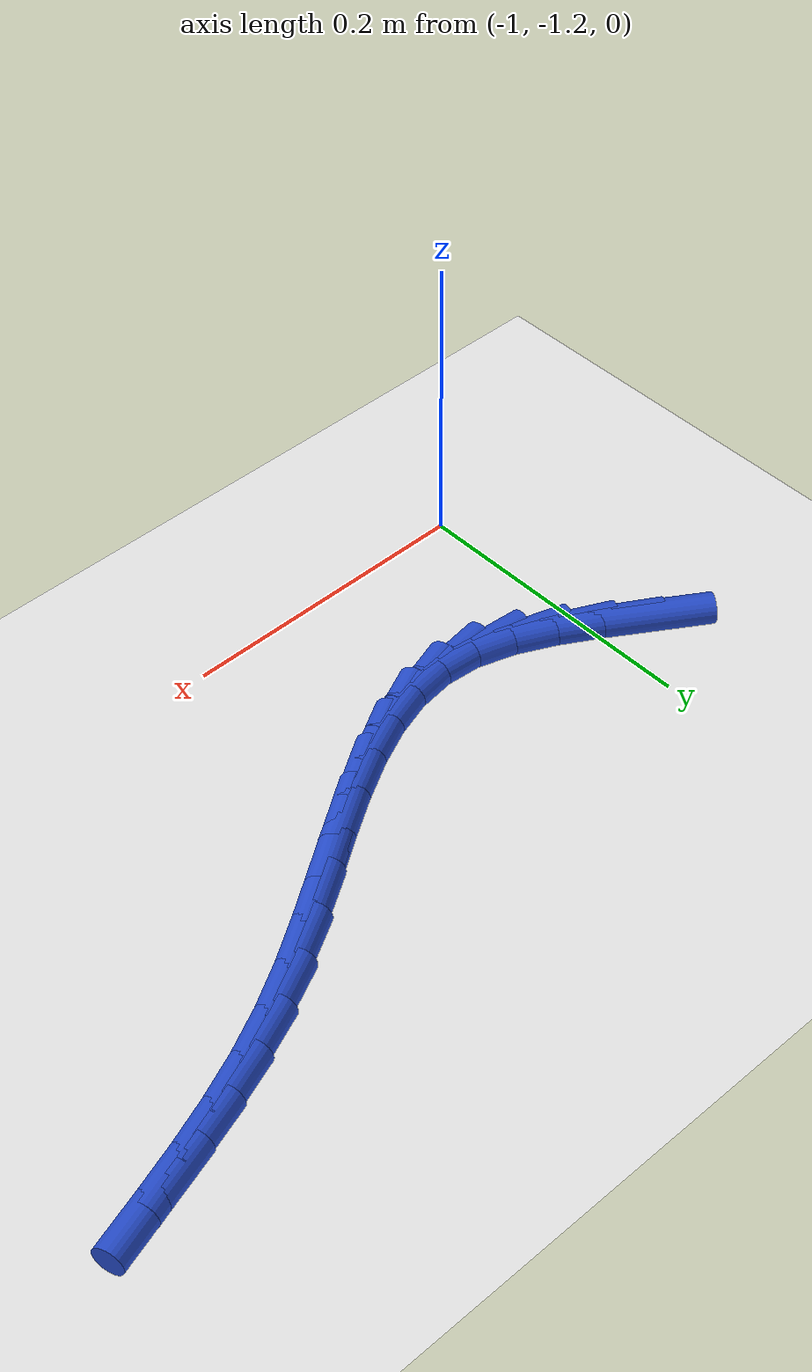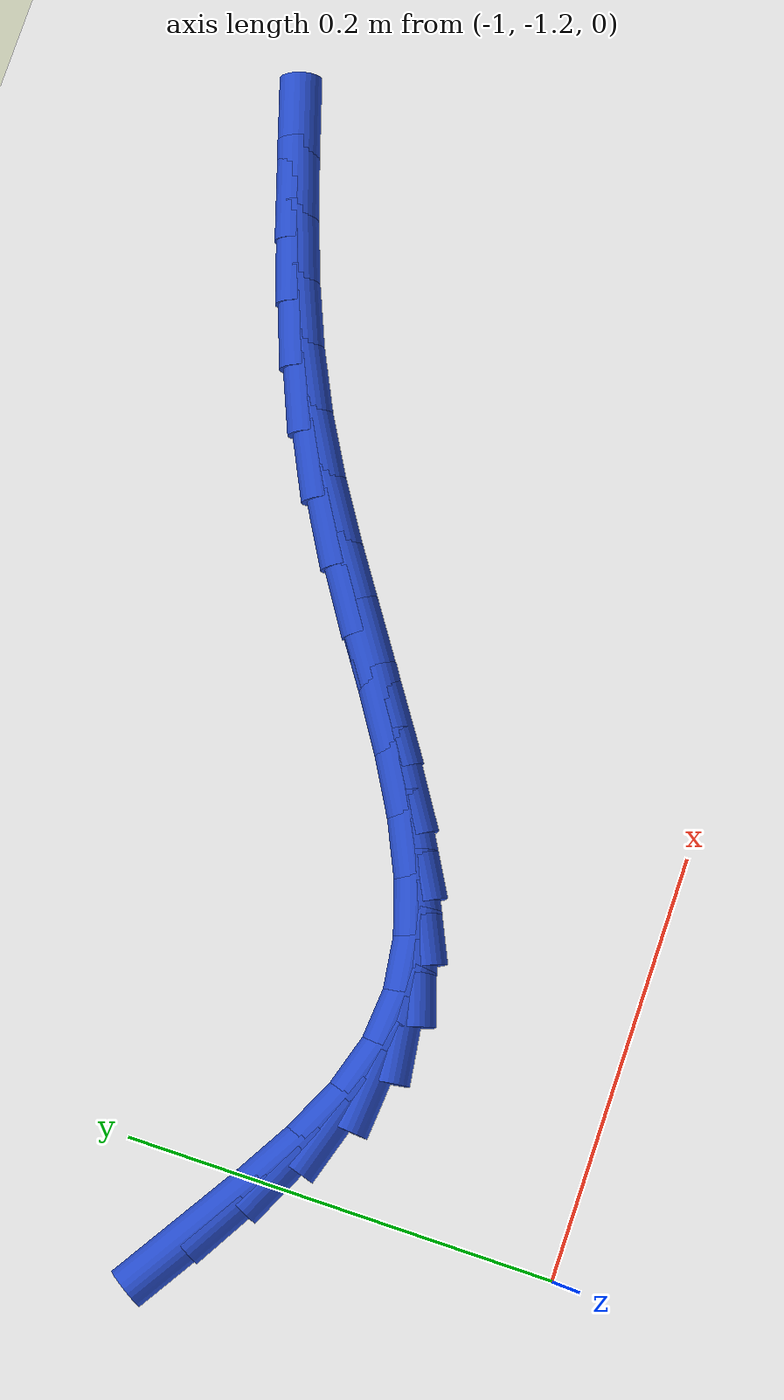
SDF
<sdf version="1.6">
 <world name="default">
  <model name="ground_plane">
   <static>1</static>
   <link name="link">
    <collision name="collision">
     <geometry><plane><normal>0 0 1</normal><size>100 100</size></plane></geometry>
     <surface><friction><ode><mu>100</mu><mu2>50</mu2></ode></friction></surface>
    </collision>
    <visual name="visual">
     <cast_shadows>0</cast_shadows>
     <geometry><plane><normal>0 0 1</normal><size>100 100</size></plane></geometry>
     <material>
      <script><uri>file://media/materials/scripts/gazebo.material</uri><name>Gazebo/WhiteGlow</name></script>
     </material>
    </visual>
   </link>
  </model>
  <model name="line">
   <link name="link_173">
    <pose>-1.0292658286698713 -1.0428921860823317 0.01 0 1.57 -0.5698312144285704</pose>
    <collision name="collision">
     <geometry><cylinder><radius>0.01</radius><length>0.08</length></cylinder></geometry>
    </collision>
    <visual name="visual">
     <material>
      <script><name>Gazebo/Blue</name><uri>file://media/materials/scripts/gazebo.material</uri></script>
     </material>
     <geometry><cylinder><radius>0.01</radius><length>0.08</length></cylinder></geometry>
    </visual>
   </link>
   <link name="link_174">
    <pose>-1.0032082219172445 -1.0595880881285966 0.01 0 1.57 -0.5365276469978014</pose>
    <collision name="collision">
     <geometry><cylinder><radius>0.01</radius><length>0.08</length></cylinder></geometry>
    </collision>
    <visual name="visual">
     <material>
      <script><name>Gazebo/Blue</name><uri>file://media/materials/scripts/gazebo.material</uri></script>
     </material>
     <geometry><cylinder><radius>0.01</radius><length>0.08</length></cylinder></geometry>
    </visual>
   </link>
   <link name="link_175">
    <pose>-0.977419766955449 -1.0749249821705216 0.01 0 1.57 -0.45122486740484097</pose>
    <collision name="collision">
     <geometry><cylinder><radius>0.01</radius><length>0.08</length></cylinder></geometry>
    </collision>
    <visual name="visual">
     <material>
      <script><name>Gazebo/Blue</name><uri>file://media/materials/scripts/gazebo.material</uri></script>
     </material>
     <geometry><cylinder><radius>0.01</radius><length>0.08</length></cylinder></geometry>
    </visual>
   </link>
   <link name="link_176">
    <pose>-0.9517982371034602 -1.087340320838293 0.01 0 1.57 -0.3009132918182136</pose>
    <collision name="collision">
     <geometry><cylinder><radius>0.01</radius><length>0.08</length></cylinder></geometry>
    </collision>
    <visual name="visual">
     <material>
      <script><name>Gazebo/Blue</name><uri>file://media/materials/scripts/gazebo.material</uri></script>
     </material>
     <geometry><cylinder><radius>0.01</radius><length>0.08</length></cylinder></geometry>
    </visual>
   </link>
   <link name="link_177">
    <pose>-0.9262414056802533 -1.0952715567620983 0.01 0 1.57 -0.08237591811417416</pose>
    <collision name="collision">
     <geometry><cylinder><radius>0.01</radius><length>0.08</length></cylinder></geometry>
    </collision>
    <visual name="visual">
     <material>
      <script><name>Gazebo/Blue</name><uri>file://media/materials/scripts/gazebo.material</uri></script>
     </material>
     <geometry><cylinder><radius>0.01</radius><length>0.08</length></cylinder></geometry>
    </visual>
   </link>
   <link name="link_178">
    <pose>-0.9006521308996055 -1.0973842777576328 0.01 0 1.57 0.13442105473946567</pose>
    <collision name="collision">
     <geometry><cylinder><radius>0.01</radius><length>0.08</length></cylinder></geometry>
    </collision>
    <visual name="visual">
     <material>
      <script><name>Gazebo/Blue</name><uri>file://media/materials/scripts/gazebo.material</uri></script>
     </material>
     <geometry><cylinder><radius>0.01</radius><length>0.08</length></cylinder></geometry>
    </visual>
   </link>
   <link name="link_179">
    <pose>-0.8749681932766903 -1.093910870171364 0.01 0 1.57 0.30634975307410045</pose>
    <collision name="collision">
     <geometry><cylinder><radius>0.01</radius><length>0.08</length></cylinder></geometry>
    </collision>
    <visual name="visual">
     <material>
      <script><name>Gazebo/Blue</name><uri>file://media/materials/scripts/gazebo.material</uri></script>
     </material>
     <geometry><cylinder><radius>0.01</radius><length>0.08</length></cylinder></geometry>
    </visual>
   </link>
   <link name="link_180">
    <pose>-0.8491420427475876 -1.0857418679002846 0.01 0 1.57 0.43128141815237186</pose>
    <collision name="collision">
     <geometry><cylinder><radius>0.01</radius><length>0.08</length></cylinder></geometry>
    </collision>
    <visual name="visual">
     <material>
      <script><name>Gazebo/Blue</name><uri>file://media/materials/scripts/gazebo.material</uri></script>
     </material>
     <geometry><cylinder><radius>0.01</radius><length>0.08</length></cylinder></geometry>
    </visual>
   </link>
   <link name="link_181">
    <pose>-0.8231261798109422 -1.0737700733445763 0.01 0 1.57 0.5156943691363708</pose>
    <collision name="collision">
     <geometry><cylinder><radius>0.01</radius><length>0.08</length></cylinder></geometry>
    </collision>
    <visual name="visual">
     <material>
      <script><name>Gazebo/Blue</name><uri>file://media/materials/scripts/gazebo.material</uri></script>
     </material>
     <geometry><cylinder><radius>0.01</radius><length>0.08</length></cylinder></geometry>
    </visual>
   </link>
   <link name="link_182">
    <pose>-0.7968731049653967 -1.0588882889044178 0.01 0 1.57 0.5670319596381891</pose>
    <collision name="collision">
     <geometry><cylinder><radius>0.01</radius><length>0.08</length></cylinder></geometry>
    </collision>
    <visual name="visual">
     <material>
      <script><name>Gazebo/Blue</name><uri>file://media/materials/scripts/gazebo.material</uri></script>
     </material>
     <geometry><cylinder><radius>0.01</radius><length>0.08</length></cylinder></geometry>
    </visual>
   </link>
   <link name="link_183">
    <pose>-0.7703353187095959 -1.04198931697999 0.01 0 1.57 0.5908320663582141</pose>
    <collision name="collision">
     <geometry><cylinder><radius>0.01</radius><length>0.08</length></cylinder></geometry>
    </collision>
    <visual name="visual">
     <material>
      <script><name>Gazebo/Blue</name><uri>file://media/materials/scripts/gazebo.material</uri></script>
     </material>
     <geometry><cylinder><radius>0.01</radius><length>0.08</length></cylinder></geometry>
    </visual>
   </link>
   <link name="link_184">
    <pose>-0.7434653215421828 -1.0239659599714717 0.01 0 1.57 0.5902468595125777</pose>
    <collision name="collision">
     <geometry><cylinder><radius>0.01</radius><length>0.08</length></cylinder></geometry>
    </collision>
    <visual name="visual">
     <material>
      <script><name>Gazebo/Blue</name><uri>file://media/materials/scripts/gazebo.material</uri></script>
     </material>
     <geometry><cylinder><radius>0.01</radius><length>0.08</length></cylinder></geometry>
    </visual>
   </link>
   <link name="link_185">
    <pose>-0.7162156139618028 -1.005711020279044 0.01 0 1.57 0.5662439470039107</pose>
    <collision name="collision">
     <geometry><cylinder><radius>0.01</radius><length>0.08</length></cylinder></geometry>
    </collision>
    <visual name="visual">
     <material>
      <script><name>Gazebo/Blue</name><uri>file://media/materials/scripts/gazebo.material</uri></script>
     </material>
     <geometry><cylinder><radius>0.01</radius><length>0.08</length></cylinder></geometry>
    </visual>
   </link>
   <link name="link_186">
    <pose>-0.6885386964670993 -0.988117300302887 0.01 0 1.57 0.5178934096765068</pose>
    <collision name="collision">
     <geometry><cylinder><radius>0.01</radius><length>0.08</length></cylinder></geometry>
    </collision>
    <visual name="visual">
     <material>
      <script><name>Gazebo/Blue</name><uri>file://media/materials/scripts/gazebo.material</uri></script>
     </material>
     <geometry><cylinder><radius>0.01</radius><length>0.08</length></cylinder></geometry>
    </visual>
   </link>
   <link name="link_187">
    <pose>-0.6603871016773001 -0.9720774222095242 0.01 0 1.57 0.45151977435253915</pose>
    <collision name="collision">
     <geometry><cylinder><radius>0.01</radius><length>0.08</length></cylinder></geometry>
    </collision>
    <visual name="visual">
     <material>
      <script><name>Gazebo/Blue</name><uri>file://media/materials/scripts/gazebo.material</uri></script>
     </material>
     <geometry><cylinder><radius>0.01</radius><length>0.08</length></cylinder></geometry>
    </visual>
   </link>
   <link name="link_188">
    <pose>-0.6317644386844605 -0.9581974100303715 0.01 0 1.57 0.39259035898936717</pose>
    <collision name="collision">
     <geometry><cylinder><radius>0.01</radius><length>0.08</length></cylinder></geometry>
    </collision>
    <visual name="visual">
     <material>
      <script><name>Gazebo/Blue</name><uri>file://media/materials/scripts/gazebo.material</uri></script>
     </material>
     <geometry><cylinder><radius>0.01</radius><length>0.08</length></cylinder></geometry>
    </visual>
   </link>
   <link name="link_189">
    <pose>-0.6028289486059506 -0.946215623143665 0.01 0 1.57 0.3469816815562059</pose>
    <collision name="collision">
     <geometry><cylinder><radius>0.01</radius><length>0.08</length></cylinder></geometry>
    </collision>
    <visual name="visual">
     <material>
      <script><name>Gazebo/Blue</name><uri>file://media/materials/scripts/gazebo.material</uri></script>
     </material>
     <geometry><cylinder><radius>0.01</radius><length>0.08</length></cylinder></geometry>
    </visual>
   </link>
   <link name="link_190">
    <pose>-0.5737680233847068 -0.9357068510532436 0.01 0 1.57 0.31536375927086246</pose>
    <collision name="collision">
     <geometry><cylinder><radius>0.01</radius><length>0.08</length></cylinder></geometry>
    </collision>
    <visual name="visual">
     <material>
      <script><name>Gazebo/Blue</name><uri>file://media/materials/scripts/gazebo.material</uri></script>
     </material>
     <geometry><cylinder><radius>0.01</radius><length>0.08</length></cylinder></geometry>
    </visual>
   </link>
   <link name="link_191">
    <pose>-0.5447690549636672 -0.9262458832629474 0.01 0 1.57 0.29825542818857037</pose>
    <collision name="collision">
     <geometry><cylinder><radius>0.01</radius><length>0.08</length></cylinder></geometry>
    </collision>
    <visual name="visual">
     <material>
      <script><name>Gazebo/Blue</name><uri>file://media/materials/scripts/gazebo.material</uri></script>
     </material>
     <geometry><cylinder><radius>0.01</radius><length>0.08</length></cylinder></geometry>
    </visual>
   </link>
  </model>
 </world>
</sdf>
